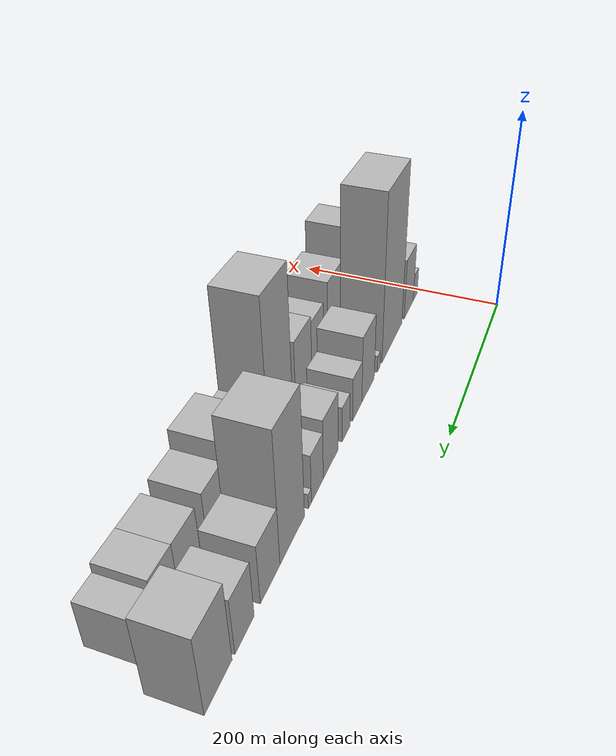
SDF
<sdf version="1.6">
 <world name="default">
  <model name="building_15">
   <static>1</static>
   <pose>100.0000 14.4536 0 0.000000 0.000000 0.000000</pose>
   <link name="link">
    <pose>0 0 15.00 0 0 0</pose>
    <collision name="collision"><geometry><box><size>40.0000 15.0865 30.0000</size></box></geometry></collision>
    <visual name="visual">
     <cast_shadows>0</cast_shadows>
     <geometry><box><size>40.0000 15.0865 30.0000</size></box></geometry>
     <material>
      <script>
       <uri>model://HANNAS_wall/materials/scripts</uri>
       <uri>model://HANNAS_wall/materials/textures</uri>
       <name>vrc/HANNAS_wall</name>
      </script>
     </material>
    </visual>
   </link>
  </model>
  <model name="building_16">
   <static>1</static>
   <pose>100.0000 38.5198 0 0.000000 0.000000 0.000000</pose>
   <link name="link">
    <pose>0 0 33.00 0 0 0</pose>
    <collision name="collision"><geometry><box><size>40.0000 33.0458 66.0000</size></box></geometry></collision>
    <visual name="visual">
     <cast_shadows>0</cast_shadows>
     <geometry><box><size>40.0000 33.0458 66.0000</size></box></geometry>
     <material>
      <script>
       <uri>model://HANNAS_wall/materials/scripts</uri>
       <uri>model://HANNAS_wall/materials/textures</uri>
       <name>vrc/HANNAS_wall</name>
      </script>
     </material>
    </visual>
   </link>
  </model>
  <model name="building_17">
   <static>1</static>
   <pose>100.0000 95.5724 0 0.000000 0.000000 0.000000</pose>
   <link name="link">
    <pose>0 0 85.50 0 0 0</pose>
    <collision name="collision"><geometry><box><size>40.0000 65.0595 171.0000</size></box></geometry></collision>
    <visual name="visual">
     <cast_shadows>0</cast_shadows>
     <geometry><box><size>40.0000 65.0595 171.0000</size></box></geometry>
     <material>
      <script>
       <uri>model://HANNAS_wall/materials/scripts</uri>
       <uri>model://HANNAS_wall/materials/textures</uri>
       <name>vrc/HANNAS_wall</name>
      </script>
     </material>
    </visual>
   </link>
  </model>
  <model name="building_18">
   <static>1</static>
   <pose>100.0000 138.0906 0 0.000000 0.000000 0.000000</pose>
   <link name="link">
    <pose>0 0 9.00 0 0 0</pose>
    <collision name="collision"><geometry><box><size>40.0000 7.9769 18.0000</size></box></geometry></collision>
    <visual name="visual">
     <cast_shadows>0</cast_shadows>
     <geometry><box><size>40.0000 7.9769 18.0000</size></box></geometry>
     <material>
      <script>
       <uri>model://HANNAS_wall/materials/scripts</uri>
       <uri>model://HANNAS_wall/materials/textures</uri>
       <name>vrc/HANNAS_wall</name>
      </script>
     </material>
    </visual>
   </link>
  </model>
  <model name="building_19">
   <static>1</static>
   <pose>100.0000 168.5729 0 0.000000 0.000000 0.000000</pose>
   <link name="link">
    <pose>0 0 34.50 0 0 0</pose>
    <collision name="collision"><geometry><box><size>40.0000 34.9877 69.0000</size></box></geometry></collision>
    <visual name="visual">
     <cast_shadows>0</cast_shadows>
     <geometry><box><size>40.0000 34.9877 69.0000</size></box></geometry>
     <material>
      <script>
       <uri>model://HANNAS_wall/materials/scripts</uri>
       <uri>model://HANNAS_wall/materials/textures</uri>
       <name>vrc/HANNAS_wall</name>
      </script>
     </material>
    </visual>
   </link>
  </model>
  <model name="building_20">
   <static>1</static>
   <pose>100.0000 198.2726 0 0.000000 0.000000 0.000000</pose>
   <link name="link">
    <pose>0 0 22.50 0 0 0</pose>
    <collision name="collision"><geometry><box><size>40.0000 24.4117 45.0000</size></box></geometry></collision>
    <visual name="visual">
     <cast_shadows>0</cast_shadows>
     <geometry><box><size>40.0000 24.4117 45.0000</size></box></geometry>
     <material>
      <script>
       <uri>model://HANNAS_wall/materials/scripts</uri>
       <uri>model://HANNAS_wall/materials/textures</uri>
       <name>vrc/HANNAS_wall</name>
      </script>
     </material>
    </visual>
   </link>
  </model>
  <model name="building_21">
   <static>1</static>
   <pose>100.0000 226.9688 0 0.000000 0.000000 0.000000</pose>
   <link name="link">
    <pose>0 0 18.00 0 0 0</pose>
    <collision name="collision"><geometry><box><size>40.0000 18.9807 36.0000</size></box></geometry></collision>
    <visual name="visual">
     <cast_shadows>0</cast_shadows>
     <geometry><box><size>40.0000 18.9807 36.0000</size></box></geometry>
     <material>
      <script>
       <uri>model://HANNAS_wall/materials/scripts</uri>
       <uri>model://HANNAS_wall/materials/textures</uri>
       <name>vrc/HANNAS_wall</name>
      </script>
     </material>
    </visual>
   </link>
  </model>
  <model name="building_22">
   <static>1</static>
   <pose>100.0000 263.3663 0 0.000000 0.000000 0.000000</pose>
   <link name="link">
    <pose>0 0 30.00 0 0 0</pose>
    <collision name="collision"><geometry><box><size>40.0000 33.8144 60.0000</size></box></geometry></collision>
    <visual name="visual">
     <cast_shadows>0</cast_shadows>
     <geometry><box><size>40.0000 33.8144 60.0000</size></box></geometry>
     <material>
      <script>
       <uri>model://HANNAS_wall/materials/scripts</uri>
       <uri>model://HANNAS_wall/materials/textures</uri>
       <name>vrc/HANNAS_wall</name>
      </script>
     </material>
    </visual>
   </link>
  </model>
  <model name="building_23">
   <static>1</static>
   <pose>100.0000 292.9043 0 0.000000 0.000000 0.000000</pose>
   <link name="link">
    <pose>0 0 24.00 0 0 0</pose>
    <collision name="collision"><geometry><box><size>40.0000 25.2616 48.0000</size></box></geometry></collision>
    <visual name="visual">
     <cast_shadows>0</cast_shadows>
     <geometry><box><size>40.0000 25.2616 48.0000</size></box></geometry>
     <material>
      <script>
       <uri>model://HANNAS_wall/materials/scripts</uri>
       <uri>model://HANNAS_wall/materials/textures</uri>
       <name>vrc/HANNAS_wall</name>
      </script>
     </material>
    </visual>
   </link>
  </model>
  <model name="building_24">
   <static>1</static>
   <pose>100.0000 308.6406 0 0.000000 0.000000 0.000000</pose>
   <link name="link">
    <pose>0 0 7.50 0 0 0</pose>
    <collision name="collision"><geometry><box><size>40.0000 6.2110 15.0000</size></box></geometry></collision>
    <visual name="visual">
     <cast_shadows>0</cast_shadows>
     <geometry><box><size>40.0000 6.2110 15.0000</size></box></geometry>
     <material>
      <script>
       <uri>model://HANNAS_wall/materials/scripts</uri>
       <uri>model://HANNAS_wall/materials/textures</uri>
       <name>vrc/HANNAS_wall</name>
      </script>
     </material>
    </visual>
   </link>
  </model>
  <model name="building_25">
   <static>1</static>
   <pose>100.0000 342.8545 0 0.000000 0.000000 0.000000</pose>
   <link name="link">
    <pose>0 0 63.00 0 0 0</pose>
    <collision name="collision"><geometry><box><size>40.0000 46.2169 126.0000</size></box></geometry></collision>
    <visual name="visual">
     <cast_shadows>0</cast_shadows>
     <geometry><box><size>40.0000 46.2169 126.0000</size></box></geometry>
     <material>
      <script>
       <uri>model://HANNAS_wall/materials/scripts</uri>
       <uri>model://HANNAS_wall/materials/textures</uri>
       <name>vrc/HANNAS_wall</name>
      </script>
     </material>
    </visual>
   </link>
  </model>
  <model name="building_26">
   <static>1</static>
   <pose>100.0000 382.6097 0 0.000000 0.000000 0.000000</pose>
   <link name="link">
    <pose>0 0 28.50 0 0 0</pose>
    <collision name="collision"><geometry><box><size>40.0000 33.2934 57.0000</size></box></geometry></collision>
    <visual name="visual">
     <cast_shadows>0</cast_shadows>
     <geometry><box><size>40.0000 33.2934 57.0000</size></box></geometry>
     <material>
      <script>
       <uri>model://HANNAS_wall/materials/scripts</uri>
       <uri>model://HANNAS_wall/materials/textures</uri>
       <name>vrc/HANNAS_wall</name>
      </script>
     </material>
    </visual>
   </link>
  </model>
  <model name="building_27">
   <static>1</static>
   <pose>100.0000 423.9130 0 0.000000 0.000000 0.000000</pose>
   <link name="link">
    <pose>0 0 27.00 0 0 0</pose>
    <collision name="collision"><geometry><box><size>40.0000 29.3131 54.0000</size></box></geometry></collision>
    <visual name="visual">
     <cast_shadows>0</cast_shadows>
     <geometry><box><size>40.0000 29.3131 54.0000</size></box></geometry>
     <material>
      <script>
       <uri>model://HANNAS_wall/materials/scripts</uri>
       <uri>model://HANNAS_wall/materials/textures</uri>
       <name>vrc/HANNAS_wall</name>
      </script>
     </material>
    </visual>
   </link>
  </model>
  <model name="building_28">
   <static>1</static>
   <pose>100.0000 461.6199 0 0.000000 0.000000 0.000000</pose>
   <link name="link">
    <pose>0 0 37.50 0 0 0</pose>
    <collision name="collision"><geometry><box><size>40.0000 38.1006 75.0000</size></box></geometry></collision>
    <visual name="visual">
     <cast_shadows>0</cast_shadows>
     <geometry><box><size>40.0000 38.1006 75.0000</size></box></geometry>
     <material>
      <script>
       <uri>model://HANNAS_wall/materials/scripts</uri>
       <uri>model://HANNAS_wall/materials/textures</uri>
       <name>vrc/HANNAS_wall</name>
      </script>
     </material>
    </visual>
   </link>
  </model>
  <model name="building_41">
   <static>1</static>
   <pose>152.0000 11.5406 0 0.000000 0.000000 0.000000</pose>
   <link name="link">
    <pose>0 0 36.00 0 0 0</pose>
    <collision name="collision"><geometry><box><size>40.0000 39.4904 72.0000</size></box></geometry></collision>
    <visual name="visual">
     <cast_shadows>0</cast_shadows>
     <geometry><box><size>40.0000 39.4904 72.0000</size></box></geometry>
     <material>
      <script>
       <uri>model://HANNAS_wall/materials/scripts</uri>
       <uri>model://HANNAS_wall/materials/textures</uri>
       <name>vrc/HANNAS_wall</name>
      </script>
     </material>
    </visual>
   </link>
  </model>
  <model name="building_42">
   <static>1</static>
   <pose>152.0000 58.9898 0 0.000000 0.000000 0.000000</pose>
   <link name="link">
    <pose>0 0 51.00 0 0 0</pose>
    <collision name="collision"><geometry><box><size>40.0000 35.4080 102.0000</size></box></geometry></collision>
    <visual name="visual">
     <cast_shadows>0</cast_shadows>
     <geometry><box><size>40.0000 35.4080 102.0000</size></box></geometry>
     <material>
      <script>
       <uri>model://HANNAS_wall/materials/scripts</uri>
       <uri>model://HANNAS_wall/materials/textures</uri>
       <name>vrc/HANNAS_wall</name>
      </script>
     </material>
    </visual>
   </link>
  </model>
  <model name="building_43">
   <static>1</static>
   <pose>152.0000 106.7385 0 0.000000 0.000000 0.000000</pose>
   <link name="link">
    <pose>0 0 37.50 0 0 0</pose>
    <collision name="collision"><geometry><box><size>40.0000 42.0894 75.0000</size></box></geometry></collision>
    <visual name="visual">
     <cast_shadows>0</cast_shadows>
     <geometry><box><size>40.0000 42.0894 75.0000</size></box></geometry>
     <material>
      <script>
       <uri>model://HANNAS_wall/materials/scripts</uri>
       <uri>model://HANNAS_wall/materials/textures</uri>
       <name>vrc/HANNAS_wall</name>
      </script>
     </material>
    </visual>
   </link>
  </model>
  <model name="building_44">
   <static>1</static>
   <pose>152.0000 130.9708 0 0.000000 0.000000 0.000000</pose>
   <link name="link">
    <pose>0 0 7.50 0 0 0</pose>
    <collision name="collision"><geometry><box><size>40.0000 6.3752 15.0000</size></box></geometry></collision>
    <visual name="visual">
     <cast_shadows>0</cast_shadows>
     <geometry><box><size>40.0000 6.3752 15.0000</size></box></geometry>
     <material>
      <script>
       <uri>model://HANNAS_wall/materials/scripts</uri>
       <uri>model://HANNAS_wall/materials/textures</uri>
       <name>vrc/HANNAS_wall</name>
      </script>
     </material>
    </visual>
   </link>
  </model>
  <model name="building_45">
   <static>1</static>
   <pose>152.0000 153.4798 0 0.000000 0.000000 0.000000</pose>
   <link name="link">
    <pose>0 0 30.00 0 0 0</pose>
    <collision name="collision"><geometry><box><size>40.0000 30.6429 60.0000</size></box></geometry></collision>
    <visual name="visual">
     <cast_shadows>0</cast_shadows>
     <geometry><box><size>40.0000 30.6429 60.0000</size></box></geometry>
     <material>
      <script>
       <uri>model://HANNAS_wall/materials/scripts</uri>
       <uri>model://HANNAS_wall/materials/textures</uri>
       <name>vrc/HANNAS_wall</name>
      </script>
     </material>
    </visual>
   </link>
  </model>
  <model name="building_46">
   <static>1</static>
   <pose>152.0000 187.9331 0 0.000000 0.000000 0.000000</pose>
   <link name="link">
    <pose>0 0 33.00 0 0 0</pose>
    <collision name="collision"><geometry><box><size>40.0000 38.2636 66.0000</size></box></geometry></collision>
    <visual name="visual">
     <cast_shadows>0</cast_shadows>
     <geometry><box><size>40.0000 38.2636 66.0000</size></box></geometry>
     <material>
      <script>
       <uri>model://HANNAS_wall/materials/scripts</uri>
       <uri>model://HANNAS_wall/materials/textures</uri>
       <name>vrc/HANNAS_wall</name>
      </script>
     </material>
    </visual>
   </link>
  </model>
  <model name="building_47">
   <static>1</static>
   <pose>152.0000 239.1756 0 0.000000 0.000000 0.000000</pose>
   <link name="link">
    <pose>0 0 73.50 0 0 0</pose>
    <collision name="collision"><geometry><box><size>40.0000 50.2215 147.0000</size></box></geometry></collision>
    <visual name="visual">
     <cast_shadows>0</cast_shadows>
     <geometry><box><size>40.0000 50.2215 147.0000</size></box></geometry>
     <material>
      <script>
       <uri>model://HANNAS_wall/materials/scripts</uri>
       <uri>model://HANNAS_wall/materials/textures</uri>
       <name>vrc/HANNAS_wall</name>
      </script>
     </material>
    </visual>
   </link>
  </model>
  <model name="building_48">
   <static>1</static>
   <pose>152.0000 277.1681 0 0.000000 0.000000 0.000000</pose>
   <link name="link">
    <pose>0 0 25.50 0 0 0</pose>
    <collision name="collision"><geometry><box><size>40.0000 25.7635 51.0000</size></box></geometry></collision>
    <visual name="visual">
     <cast_shadows>0</cast_shadows>
     <geometry><box><size>40.0000 25.7635 51.0000</size></box></geometry>
     <material>
      <script>
       <uri>model://HANNAS_wall/materials/scripts</uri>
       <uri>model://HANNAS_wall/materials/textures</uri>
       <name>vrc/HANNAS_wall</name>
      </script>
     </material>
    </visual>
   </link>
  </model>
  <model name="building_49">
   <static>1</static>
   <pose>152.0000 318.8669 0 0.000000 0.000000 0.000000</pose>
   <link name="link">
    <pose>0 0 37.50 0 0 0</pose>
    <collision name="collision"><geometry><box><size>40.0000 41.6340 75.0000</size></box></geometry></collision>
    <visual name="visual">
     <cast_shadows>0</cast_shadows>
     <geometry><box><size>40.0000 41.6340 75.0000</size></box></geometry>
     <material>
      <script>
       <uri>model://HANNAS_wall/materials/scripts</uri>
       <uri>model://HANNAS_wall/materials/textures</uri>
       <name>vrc/HANNAS_wall</name>
      </script>
     </material>
    </visual>
   </link>
  </model>
  <model name="building_50">
   <static>1</static>
   <pose>152.0000 355.4499 0 0.000000 0.000000 0.000000</pose>
   <link name="link">
    <pose>0 0 28.50 0 0 0</pose>
    <collision name="collision"><geometry><box><size>40.0000 31.5321 57.0000</size></box></geometry></collision>
    <visual name="visual">
     <cast_shadows>0</cast_shadows>
     <geometry><box><size>40.0000 31.5321 57.0000</size></box></geometry>
     <material>
      <script>
       <uri>model://HANNAS_wall/materials/scripts</uri>
       <uri>model://HANNAS_wall/materials/textures</uri>
       <name>vrc/HANNAS_wall</name>
      </script>
     </material>
    </visual>
   </link>
  </model>
  <model name="building_51">
   <static>1</static>
   <pose>152.0000 376.2631 0 0.000000 0.000000 0.000000</pose>
   <link name="link">
    <pose>0 0 10.50 0 0 0</pose>
    <collision name="collision"><geometry><box><size>40.0000 10.0943 21.0000</size></box></geometry></collision>
    <visual name="visual">
     <cast_shadows>0</cast_shadows>
     <geometry><box><size>40.0000 10.0943 21.0000</size></box></geometry>
     <material>
      <script>
       <uri>model://HANNAS_wall/materials/scripts</uri>
       <uri>model://HANNAS_wall/materials/textures</uri>
       <name>vrc/HANNAS_wall</name>
      </script>
     </material>
    </visual>
   </link>
  </model>
  <model name="building_52">
   <static>1</static>
   <pose>152.0000 397.1183 0 0.000000 0.000000 0.000000</pose>
   <link name="link">
    <pose>0 0 27.00 0 0 0</pose>
    <collision name="collision"><geometry><box><size>40.0000 31.6160 54.0000</size></box></geometry></collision>
    <visual name="visual">
     <cast_shadows>0</cast_shadows>
     <geometry><box><size>40.0000 31.6160 54.0000</size></box></geometry>
     <material>
      <script>
       <uri>model://HANNAS_wall/materials/scripts</uri>
       <uri>model://HANNAS_wall/materials/textures</uri>
       <name>vrc/HANNAS_wall</name>
      </script>
     </material>
    </visual>
   </link>
  </model>
  <model name="building_53">
   <static>1</static>
   <pose>152.0000 427.5307 0 0.000000 0.000000 0.000000</pose>
   <link name="link">
    <pose>0 0 27.00 0 0 0</pose>
    <collision name="collision"><geometry><box><size>40.0000 29.2088 54.0000</size></box></geometry></collision>
    <visual name="visual">
     <cast_shadows>0</cast_shadows>
     <geometry><box><size>40.0000 29.2088 54.0000</size></box></geometry>
     <material>
      <script>
       <uri>model://HANNAS_wall/materials/scripts</uri>
       <uri>model://HANNAS_wall/materials/textures</uri>
       <name>vrc/HANNAS_wall</name>
      </script>
     </material>
    </visual>
   </link>
  </model>
  <model name="building_54">
   <static>1</static>
   <pose>152.0000 453.5761 0 0.000000 0.000000 0.000000</pose>
   <link name="link">
    <pose>0 0 22.50 0 0 0</pose>
    <collision name="collision"><geometry><box><size>40.0000 22.8821 45.0000</size></box></geometry></collision>
    <visual name="visual">
     <cast_shadows>0</cast_shadows>
     <geometry><box><size>40.0000 22.8821 45.0000</size></box></geometry>
     <material>
      <script>
       <uri>model://HANNAS_wall/materials/scripts</uri>
       <uri>model://HANNAS_wall/materials/textures</uri>
       <name>vrc/HANNAS_wall</name>
      </script>
     </material>
    </visual>
   </link>
  </model>
 </world>
</sdf>
